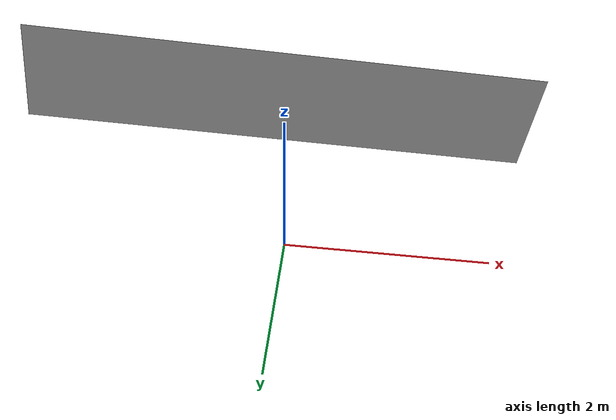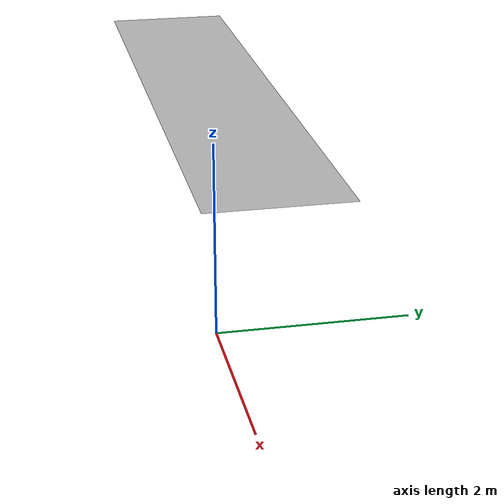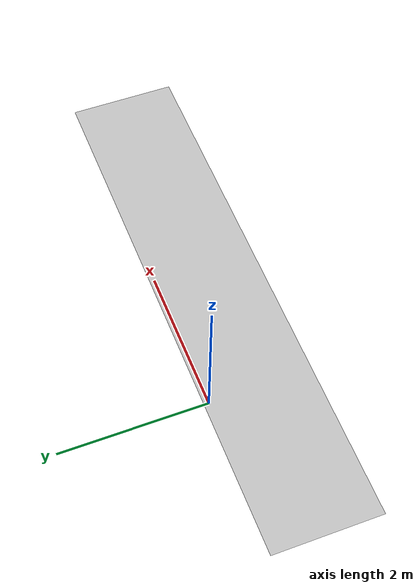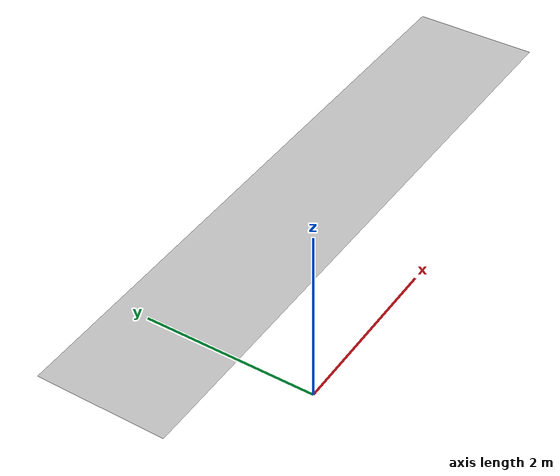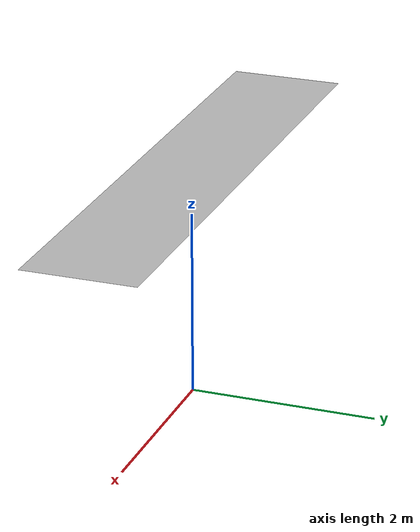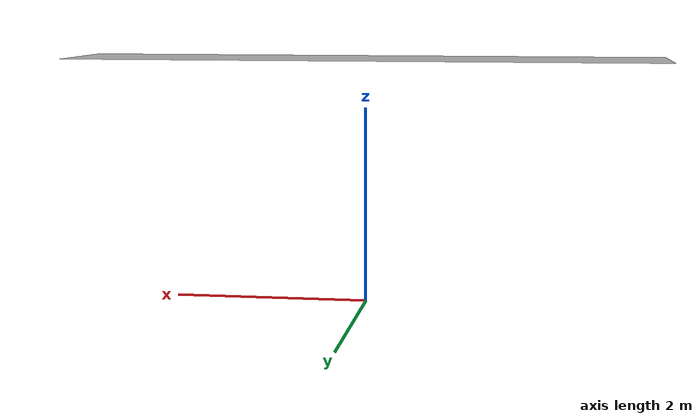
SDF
<?xml version="1.0" ?>
<sdf version='1.5'>
<model name='roof_6m'>
<static>true</static>
<link name="link">
   <pose frame=''>0 0 2.5 0 0 0</pose>
   <collision name='roof_firstC'>
    <geometry>
      <mesh>
        <scale>1.0 -1.0 1.0</scale>
        <uri>model://roof_6m/roof2.dae</uri>
      </mesh>
    </geometry>
  </collision>
  <visual name='roof_firstV'>
    <cast_shadows>false</cast_shadows>
    <geometry>
      <mesh>
        <scale>1.0 -1.0 1.0</scale>
        <uri>model://roof_6m/roof2.dae</uri>
      </mesh>
    </geometry>
  </visual>
</link>
</model>
</sdf>
